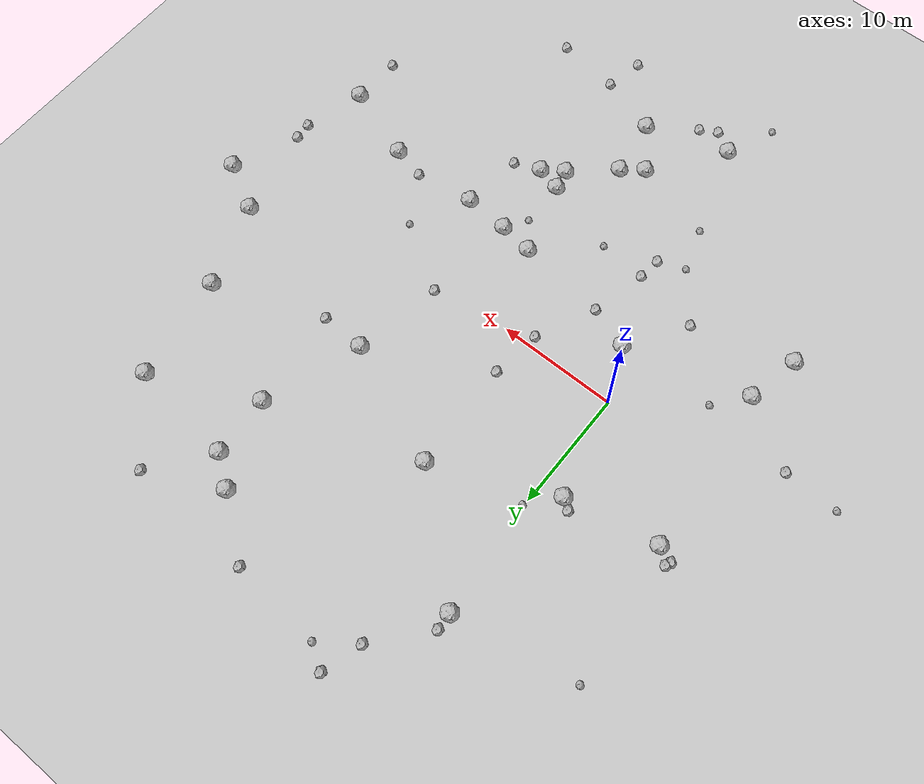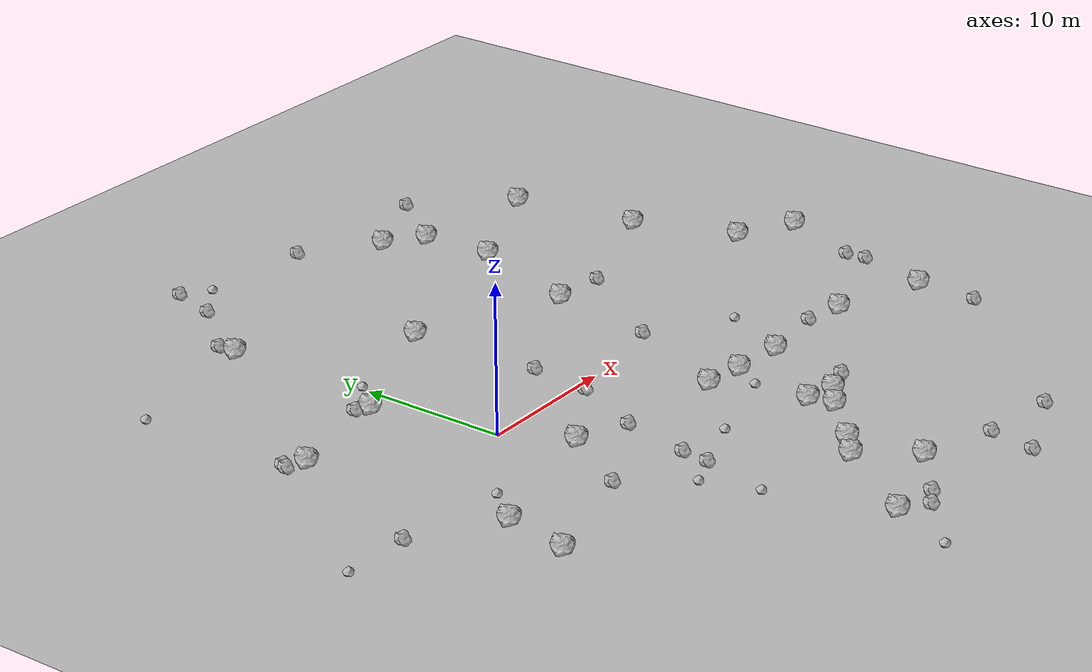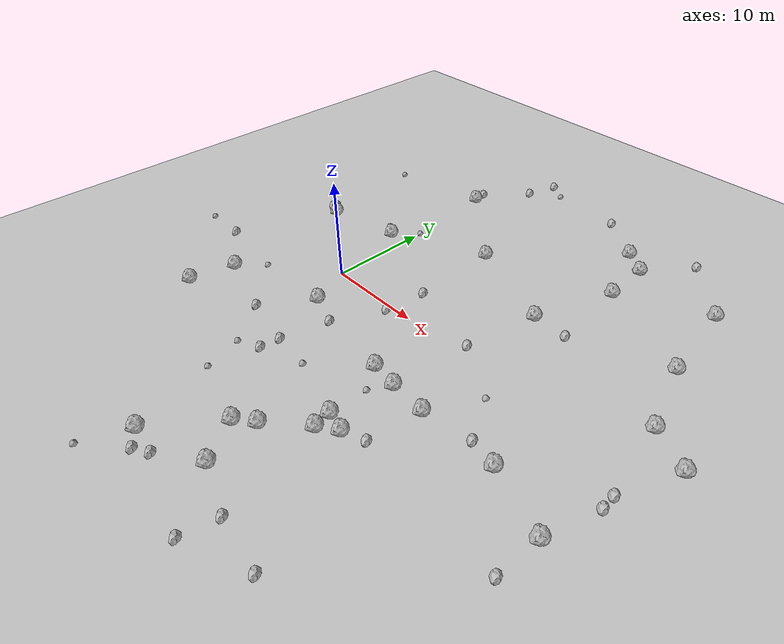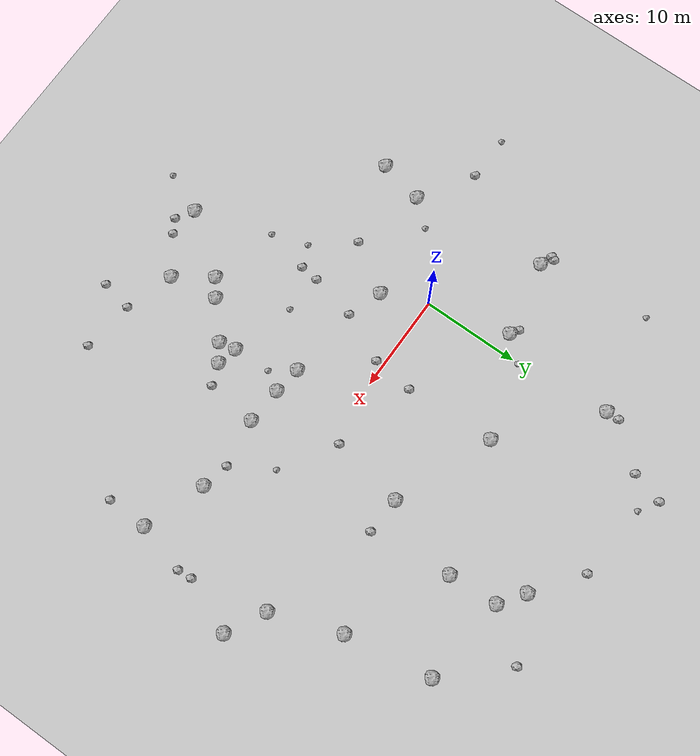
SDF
<sdf version="1.6">
 <world name="default">
  <include><uri>model://custom_ground</uri></include>
  <include><uri>model://sun</uri></include>
  <model name="rock1_0_0">
   <include><uri>model://rock1</uri><pose>17.903374062548508 8.511614454701451 0.5 0 0 0</pose></include>
  </model>
  <model name="rock1_0_1">
   <include><uri>model://rock1</uri><pose>27.260637573479094 -7.086541901217778 0.5 0 0 0</pose></include>
  </model>
  <model name="rock1_0_2">
   <include><uri>model://rock1</uri><pose>14.779956994602479 -12.641113234168863 0.5 0 0 0</pose></include>
  </model>
  <model name="rock1_0_3">
   <include><uri>model://rock1</uri><pose>15.123895841084881 -14.343905718552996 0.5 0 0 0</pose></include>
  </model>
  <model name="rock1_0_4">
   <include><uri>model://rock1</uri><pose>15.819725329030284 -6.9025398319711435 0.5 0 0 0</pose></include>
  </model>
  <model name="rock1_0_5">
   <include><uri>model://rock1</uri><pose>33.55730242436785 -9.331261969817124 0.5 0 0 0</pose></include>
  </model>
  <model name="rock1_0_6">
   <include><uri>model://rock1</uri><pose>29.363323165809675 20.66538057653038 0.5 0 0 0</pose></include>
  </model>
  <model name="rock1_0_7">
   <include><uri>model://rock1</uri><pose>20.716434089560558 16.673784464941583 0.5 0 0 0</pose></include>
  </model>
  <model name="rock1_0_8">
   <include><uri>model://rock1</uri><pose>19.584976625302282 -7.167884821622842 0.5 0 0 0</pose></include>
  </model>
  <model name="rock1_0_9">
   <include><uri>model://rock1</uri><pose>2.004655973680997 -4.438253963330915 0.5 0 0 0</pose></include>
  </model>
  <model name="rock1_0_10">
   <include><uri>model://rock1</uri><pose>-8.27162398100198 -7.219571946528035 0.5 0 0 0</pose></include>
  </model>
  <model name="rock1_0_11">
   <include><uri>model://rock1</uri><pose>5.675184436543383 -24.49783657123738 0.5 0 0 0</pose></include>
  </model>
  <model name="rock1_0_12">
   <include><uri>model://rock1</uri><pose>7.865549214750786 12.595086772178313 0.5 0 0 0</pose></include>
  </model>
  <model name="rock1_0_13">
   <include><uri>model://rock1</uri><pose>30.79203036621226 11.815364736468922 0.5 0 0 0</pose></include>
  </model>
  <model name="rock1_0_14">
   <include><uri>model://rock1</uri><pose>10.031627144665258 -18.646837776206993 0.5 0 0 0</pose></include>
  </model>
  <model name="rock1_0_15">
   <include><uri>model://rock1</uri><pose>-0.8237892630308998 20.17377706650216 0.5 0 0 0</pose></include>
  </model>
  <model name="rock1_0_16">
   <include><uri>model://rock1</uri><pose>-1.9208194834601642 8.244272644460949 0.5 0 0 0</pose></include>
  </model>
  <model name="rock1_0_17">
   <include><uri>model://rock1</uri><pose>37.17501126581183 2.69634624218142 0.5 0 0 0</pose></include>
  </model>
  <model name="rock1_0_18">
   <include><uri>model://rock1</uri><pose>12.507820767620444 -22.234153289869067 0.5 0 0 0</pose></include>
  </model>
  <model name="rock1_0_19">
   <include><uri>model://rock1</uri><pose>11.734596295507913 -17.348721622298193 0.5 0 0 0</pose></include>
  </model>
  <model name="rock1_0_20">
   <include><uri>model://rock1</uri><pose>-9.248485987300707 -11.716613627259253 0.5 0 0 0</pose></include>
  </model>
  <model name="rock1_0_21">
   <include><uri>model://rock1</uri><pose>-9.587433940524955 6.754189864909804 0.5 0 0 0</pose></include>
  </model>
  <model name="rock1_0_22">
   <include><uri>model://rock1</uri><pose>16.836864529756667 -13.155514997014016 0.5 0 0 0</pose></include>
  </model>
  <model name="rock1_0_23">
   <include><uri>model://rock1</uri><pose>33.262824325252275 4.791301548454371 0.5 0 0 0</pose></include>
  </model>
  <model name="rock1_0_24">
   <include><uri>model://rock1</uri><pose>17.943655220759304 23.533589793532798 0.5 0 0 0</pose></include>
  </model>
  <model name="rock1_0_25">
   <include><uri>model://rock1</uri><pose>20.428646234180256 21.734862199250188 0.5 0 0 0</pose></include>
  </model>
  <model name="rock1_0_26">
   <include><uri>model://rock1</uri><pose>13.001677334435335 -6.517987463725497 0.5 0 0 0</pose></include>
  </model>
  <model name="rock2_0_0">
   <include><uri>model://rock2</uri><pose>-1.1702287834888772 -9.263075284451723 0.3 0 0 0</pose></include>
  </model>
  <model name="rock2_0_1">
   <include><uri>model://rock2</uri><pose>17.459504852083263 -23.886236529729942 0.3 0 0 0</pose></include>
  </model>
  <model name="rock2_0_2">
   <include><uri>model://rock2</uri><pose>33.44205934083286 -13.535058863372317 0.3 0 0 0</pose></include>
  </model>
  <model name="rock2_0_3">
   <include><uri>model://rock2</uri><pose>-0.9211617142711219 21.582006921494965 0.3 0 0 0</pose></include>
  </model>
  <model name="rock2_0_4">
   <include><uri>model://rock2</uri><pose>21.63449989225915 8.34013250087758 0.3 0 0 0</pose></include>
  </model>
  <model name="rock2_0_5">
   <include><uri>model://rock2</uri><pose>34.9877450809209 -4.277845588263304 0.3 0 0 0</pose></include>
  </model>
  <model name="rock2_0_6">
   <include><uri>model://rock2</uri><pose>24.467259392778644 -6.456225016779882 0.3 0 0 0</pose></include>
  </model>
  <model name="rock2_0_7">
   <include><uri>model://rock2</uri><pose>18.99088907448109 -12.353219016835912 0.3 0 0 0</pose></include>
  </model>
  <model name="rock2_0_8">
   <include><uri>model://rock2</uri><pose>8.793341559504267 -24.85427452210774 0.3 0 0 0</pose></include>
  </model>
  <model name="rock2_0_9">
   <include><uri>model://rock2</uri><pose>7.394381446363976 -25.653886966304103 0.3 0 0 0</pose></include>
  </model>
  <model name="rock2_0_10">
   <include><uri>model://rock2</uri><pose>2.593240756112536 25.729493489826574 0.3 0 0 0</pose></include>
  </model>
  <model name="rock2_0_11">
   <include><uri>model://rock2</uri><pose>23.99573150135334 26.48134833908331 0.3 0 0 0</pose></include>
  </model>
  <model name="rock2_0_12">
   <include><uri>model://rock2</uri><pose>34.87866845877564 -2.8184510761796844 0.3 0 0 0</pose></include>
  </model>
  <model name="rock2_0_13">
   <include><uri>model://rock2</uri><pose>4.201618775953197 -12.284695036170142 0.3 0 0 0</pose></include>
  </model>
  <model name="rock2_0_14">
   <include><uri>model://rock2</uri><pose>5.474560629456743 -5.6763338981137395 0.3 0 0 0</pose></include>
  </model>
  <model name="rock2_0_15">
   <include><uri>model://rock2</uri><pose>-2.810387304183667 8.830839312979833 0.3 0 0 0</pose></include>
  </model>
  <model name="rock2_0_16">
   <include><uri>model://rock2</uri><pose>4.416010425001598 -10.38026359885356 0.3 0 0 0</pose></include>
  </model>
  <model name="rock2_0_17">
   <include><uri>model://rock2</uri><pose>8.253862537078753 3.437334307825296 0.3 0 0 0</pose></include>
  </model>
  <model name="rock2_0_18">
   <include><uri>model://rock2</uri><pose>16.815411788067188 -27.039675876134133 0.3 0 0 0</pose></include>
  </model>
  <model name="rock2_0_19">
   <include><uri>model://rock2</uri><pose>16.527085544651513 1.0504445118890402 0.3 0 0 0</pose></include>
  </model>
  <model name="rock2_0_20">
   <include><uri>model://rock2</uri><pose>3.5582239503769664 29.01902435668692 0.3 0 0 0</pose></include>
  </model>
  <model name="rock2_0_21">
   <include><uri>model://rock2</uri><pose>-13.701198336247426 -3.7677334316980335 0.3 0 0 0</pose></include>
  </model>
  <model name="rock2_0_22">
   <include><uri>model://rock2</uri><pose>7.774355240260988 -0.7933884866018808 0.3 0 0 0</pose></include>
  </model>
  <model name="rock2_0_23">
   <include><uri>model://rock2</uri><pose>-10.973334494253603 7.259136997878905 0.3 0 0 0</pose></include>
  </model>
  <model name="rock2_0_24">
   <include><uri>model://rock2</uri><pose>13.15966545543278 27.149430490652406 0.3 0 0 0</pose></include>
  </model>
  <model name="rock2_0_25">
   <include><uri>model://rock2</uri><pose>22.756660370173805 -24.612955974721917 0.3 0 0 0</pose></include>
  </model>
  <model name="rock2_0_26">
   <include><uri>model://rock2</uri><pose>-10.78573636698593 7.662729570988326 0.3 0 0 0</pose></include>
  </model>
  <model name="rock3_0_0">
   <include><uri>model://rock3</uri><pose>0.058698641481274905 10.554288195827716 0.2 0 0 0</pose></include>
  </model>
  <model name="rock3_0_1">
   <include><uri>model://rock3</uri><pose>22.00720076038276 -2.4093374992245202 0.2 0 0 0</pose></include>
  </model>
  <model name="rock3_0_2">
   <include><uri>model://rock3</uri><pose>8.389695473061487 -10.773396183943326 0.2 0 0 0</pose></include>
  </model>
  <model name="rock3_0_3">
   <include><uri>model://rock3</uri><pose>1.9678628552537205 -13.233589463192999 0.2 0 0 0</pose></include>
  </model>
  <model name="rock3_0_4">
   <include><uri>model://rock3</uri><pose>3.8489454128703358 -28.667570876450746 0.2 0 0 0</pose></include>
  </model>
  <model name="rock3_0_5">
   <include><uri>model://rock3</uri><pose>14.628921710737856 -8.845556784455852 0.2 0 0 0</pose></include>
  </model>
  <model name="rock3_0_6">
   <include><uri>model://rock3</uri><pose>5.45372665020561 27.815762722779894 0.2 0 0 0</pose></include>
  </model>
  <model name="rock3_0_7">
   <include><uri>model://rock3</uri><pose>3.1314542167554507 -16.849627228267003 0.2 0 0 0</pose></include>
  </model>
  <model name="rock3_0_8">
   <include><uri>model://rock3</uri><pose>-6.196668111786083 -4.7101682233003785 0.2 0 0 0</pose></include>
  </model>
  <model name="rock3_0_9">
   <include><uri>model://rock3</uri><pose>-11.096397692758925 18.265720746897316 0.2 0 0 0</pose></include>
  </model>
  <model name="rock3_0_10">
   <include><uri>model://rock3</uri><pose>-18.310202099482954 -3.6807782667247153 0.2 0 0 0</pose></include>
  </model>
 </world>
</sdf>
